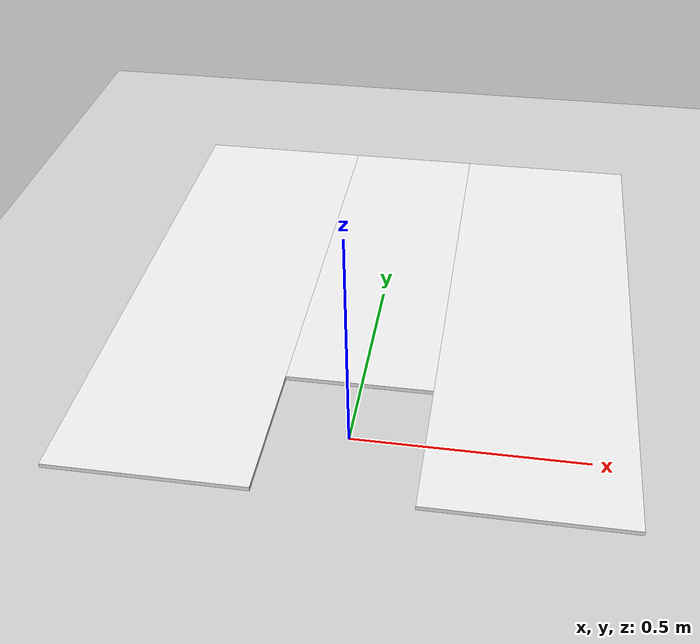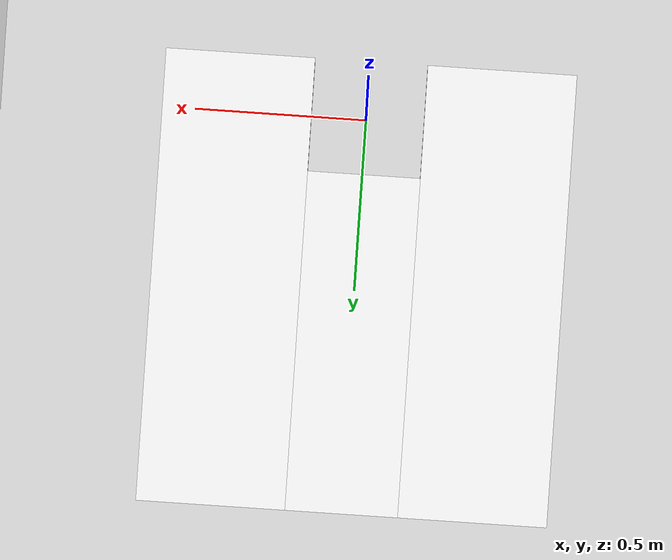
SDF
<?xml version="1.0" ?>
<sdf version="1.6">
  <world name="default">

    <physics type="ode">
      <max_contacts>50</max_contacts>
      <real_time_update_rate>1000</real_time_update_rate> <!-- "Smooth"*: 1000  - Erez2015: 2500 - *PC dependend -->
      <max_step_size>0.001</max_step_size> <!-- "Smooth"*: 0.001 - Erez2015: 0.00025 - *PC dependend-->
      <ode>
        <solver>
          <type>quick</type>
          <iters>50</iters>
        </solver>
      </ode>
    </physics>

    <!-- Focus camera -->
    <gui fullscreen='0'>
      <camera name='user_camera'>
       	      <!-- the pose of the real video camera with respect to the table -->
              <pose>-0.93 1.09 0.52 0 0.044 -0.6428</pose>
	      <view_controller>orbit</view_controller>
      </camera>
    </gui>

    <include>
      <uri>model://ground_plane</uri>
    </include>

     <!-- Global light source -->
    <include>
      <uri>model://sun</uri>
    </include>
	<!-- Remove the shadows from the scene -->
	<scene>
	</scene>

    <!-- All the surfaces are named as if you're looking at the robot in the lab
         (looking at the direction of the positive Y axis) -->
    <!-- Surface of the table - Right side -->
    <model name='right_surface'>
      <link name='link_right'>
        <gravity>0</gravity>
        <self_collide>0</self_collide>
        <kinematic>0</kinematic>
        <visual name='visual'>
          <pose frame=''>0.3775 0.49 0.005 0 0 0</pose>
          <geometry>
            <box>
              <size>0.435 1.32 0.01</size>
            </box>
          </geometry>
          <material>
            <lighting>1</lighting>
            <script>
              <uri>file://media/materials/scripts/gazebo.material</uri>
              <name>Gazebo/White</name>
            </script>
            <ambient>1 1 1 1</ambient>
            <diffuse>1 1 1 1</diffuse>
            <specular>0.01 0.01 0.01 1</specular>
            <emissive>0 0 0 1</emissive>
            <shader type='vertex'>
              <normal_map>__default__</normal_map>
            </shader>
          </material>
          <cast_shadows>1</cast_shadows>
          <transparency>0</transparency>
        </visual>
        <collision name='collision'>
          <laser_retro>0</laser_retro>
          <max_contacts>10</max_contacts>
          <pose frame=''>0.3775 0.49 0.005 0 0 0</pose>
          <geometry>
            <box>
              <size>0.435 1.32 0.01</size>
            </box>
          </geometry>
          <surface>
            <friction>
              <ode>
                <mu>0.9</mu>
                <mu2>0.9</mu2>
                <fdir1>0 0 0</fdir1>
                <slip1>0</slip1>
                <slip2>0</slip2>
              </ode>
              <torsional>
                <coefficient>1</coefficient>
                <patch_radius>0</patch_radius>
                <surface_radius>0</surface_radius>
                <use_patch_radius>1</use_patch_radius>
                <ode>
                  <slip>0</slip>
                </ode>
              </torsional>
            </friction>
            <bounce>
              <restitution_coefficient>0</restitution_coefficient>
              <threshold>1e+06</threshold>
            </bounce>
            <contact>
              <collide_without_contact>0</collide_without_contact>
              <collide_without_contact_bitmask>1</collide_without_contact_bitmask>
              <collide_bitmask>1</collide_bitmask>
              <ode>
                <soft_cfm>0</soft_cfm>
                <soft_erp>0.2</soft_erp>
                <kp>1e+13</kp>
                <kd>1</kd>
                <max_vel>0.01</max_vel>
                <min_depth>0</min_depth>
              </ode>
              <bullet>
                <split_impulse>1</split_impulse>
                <split_impulse_penetration_threshold>-0.01</split_impulse_penetration_threshold>
                <soft_cfm>0</soft_cfm>
                <soft_erp>0.2</soft_erp>
                <kp>1e+13</kp>
                <kd>1</kd>
              </bullet>
            </contact>
          </surface>
        </collision>
      </link>
      <static>1</static>
    </model>

    <!-- Surface of the table - Left side -->
    <model name='left_surface'>
      <link name='link_left'>
        <gravity>0</gravity>
        <self_collide>0</self_collide>
        <kinematic>0</kinematic>
        <visual name='visual'>
          <pose frame=''>-0.3865 0.49 0.005 0 0 0</pose>
          <geometry>
            <box>
              <size>0.435 1.32 0.01</size>
            </box>
          </geometry>
          <material>
            <lighting>1</lighting>
            <script>
              <uri>file://media/materials/scripts/gazebo.material</uri>
              <name>Gazebo/White</name>
            </script>
            <ambient>1 1 1 1</ambient>
            <diffuse>1 1 1 1</diffuse>
            <specular>0.01 0.01 0.01 1</specular>
            <emissive>0 0 0 1</emissive>
            <shader type='vertex'>
              <normal_map>__default__</normal_map>
            </shader>
          </material>
          <cast_shadows>1</cast_shadows>
          <transparency>0</transparency>
        </visual>
        <collision name='collision'>
          <laser_retro>0</laser_retro>
          <max_contacts>10</max_contacts>
          <pose frame=''>-0.3865 0.49 0.005 0 0 0</pose>
          <geometry>
            <box>
              <size>0.435 1.32 0.01</size>
            </box>
          </geometry>
          <surface>
            <friction>
              <ode>
                <mu>0.9</mu>
                <mu2>0.9</mu2>
                <fdir1>0 0 0</fdir1>
                <slip1>0</slip1>
                <slip2>0</slip2>
              </ode>
              <torsional>
                <coefficient>1</coefficient>
                <patch_radius>0</patch_radius>
                <surface_radius>0</surface_radius>
                <use_patch_radius>1</use_patch_radius>
                <ode>
                  <slip>0</slip>
                </ode>
              </torsional>
            </friction>
            <bounce>
              <restitution_coefficient>0</restitution_coefficient>
              <threshold>1e+06</threshold>
            </bounce>
            <contact>
              <collide_without_contact>0</collide_without_contact>
              <collide_without_contact_bitmask>1</collide_without_contact_bitmask>
              <collide_bitmask>1</collide_bitmask>
              <ode>
                <soft_cfm>0</soft_cfm>
                <soft_erp>0.2</soft_erp>
                <kp>1e+13</kp>
                <kd>1</kd>
                <max_vel>0.01</max_vel>
                <min_depth>0</min_depth>
              </ode>
              <bullet>
                <split_impulse>1</split_impulse>
                <split_impulse_penetration_threshold>-0.01</split_impulse_penetration_threshold>
                <soft_cfm>0</soft_cfm>
                <soft_erp>0.2</soft_erp>
                <kp>1e+13</kp>
                <kd>1</kd>
              </bullet>
            </contact>
          </surface>
        </collision>
      </link>
      <static>1</static>
    </model>

    <!-- Surface of the table - Front side -->
    <model name='front_surface'>
      <link name='link_front'>
        <gravity>0</gravity>
        <self_collide>0</self_collide>
        <kinematic>0</kinematic>
        <visual name='visual'>
          <pose frame=''>-0.0045 0.655 0.005 0 0 0</pose>
          <geometry>
            <box>
              <size>0.329 0.99 0.01</size>
            </box>
          </geometry>
          <material>
            <lighting>1</lighting>
            <script>
              <uri>file://media/materials/scripts/gazebo.material</uri>
              <name>Gazebo/White</name>
            </script>
            <ambient>1 1 1 1</ambient>
            <diffuse>1 1 1 1</diffuse>
            <specular>0.01 0.01 0.01 1</specular>
            <emissive>0 0 0 1</emissive>
            <shader type='vertex'>
              <normal_map>__default__</normal_map>
            </shader>
          </material>
          <cast_shadows>1</cast_shadows>
          <transparency>0</transparency>
        </visual>
        <collision name='collision'>
          <laser_retro>0</laser_retro>
          <max_contacts>10</max_contacts>
          <pose frame=''>-0.0045 0.655 0.005 0 0 0</pose>
          <geometry>
            <box>
              <size>0.329 0.99 0.01</size>
            </box>
          </geometry>
          <surface>
            <friction>
              <ode>
                <mu>0.9</mu>
                <mu2>0.9</mu2>
                <fdir1>0 0 0</fdir1>
                <slip1>0</slip1>
                <slip2>0</slip2>
              </ode>
              <torsional>
                <coefficient>1</coefficient>
                <patch_radius>0</patch_radius>
                <surface_radius>0</surface_radius>
                <use_patch_radius>1</use_patch_radius>
                <ode>
                  <slip>0</slip>
                </ode>
              </torsional>
            </friction>
            <bounce>
              <restitution_coefficient>0</restitution_coefficient>
              <threshold>1e+06</threshold>
            </bounce>
            <contact>
              <collide_without_contact>0</collide_without_contact>
              <collide_without_contact_bitmask>1</collide_without_contact_bitmask>
              <collide_bitmask>1</collide_bitmask>
              <ode>
                <soft_cfm>0</soft_cfm>
                <soft_erp>0.2</soft_erp>
                <kp>1e+13</kp>
                <kd>1</kd>
                <max_vel>0.01</max_vel>
                <min_depth>0</min_depth>
              </ode>
              <bullet>
                <split_impulse>1</split_impulse>
                <split_impulse_penetration_threshold>-0.01</split_impulse_penetration_threshold>
                <soft_cfm>0</soft_cfm>
                <soft_erp>0.2</soft_erp>
                <kp>1e+13</kp>
                <kd>1</kd>
              </bullet>
            </contact>
          </surface>
        </collision>
      </link>
      <static>1</static>
    </model>

  </world>
</sdf>
